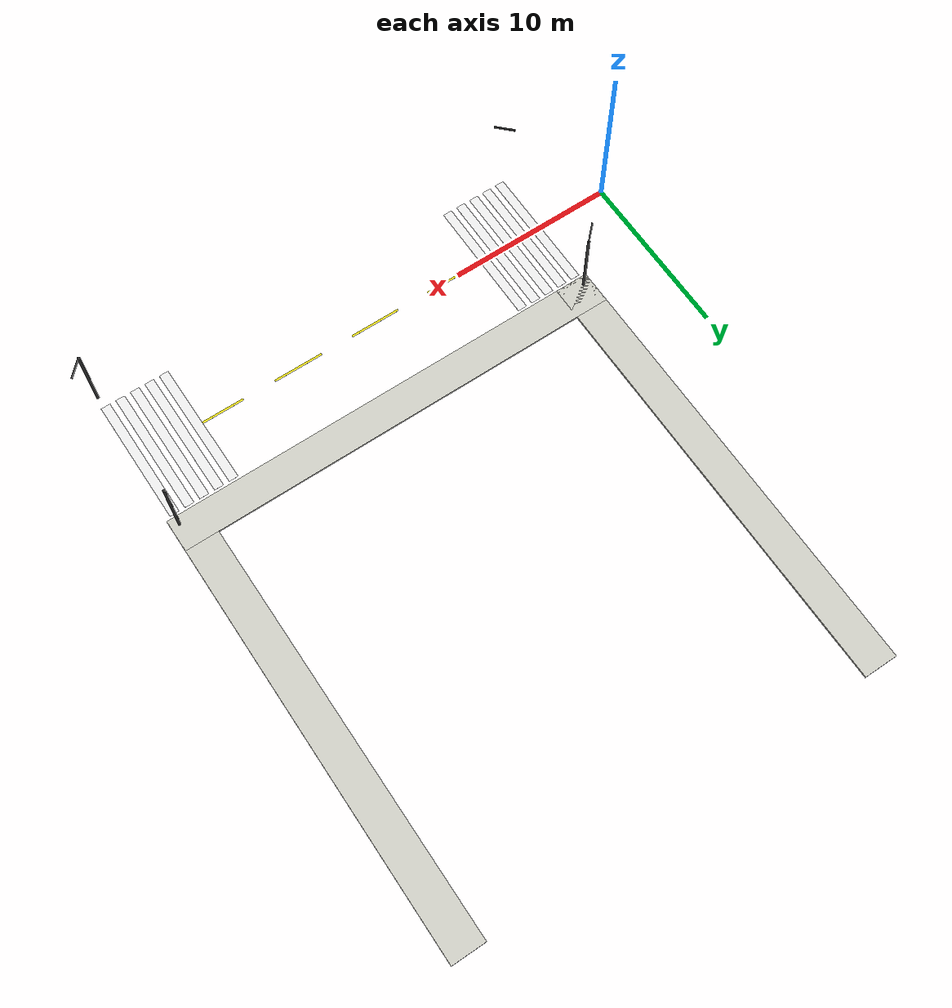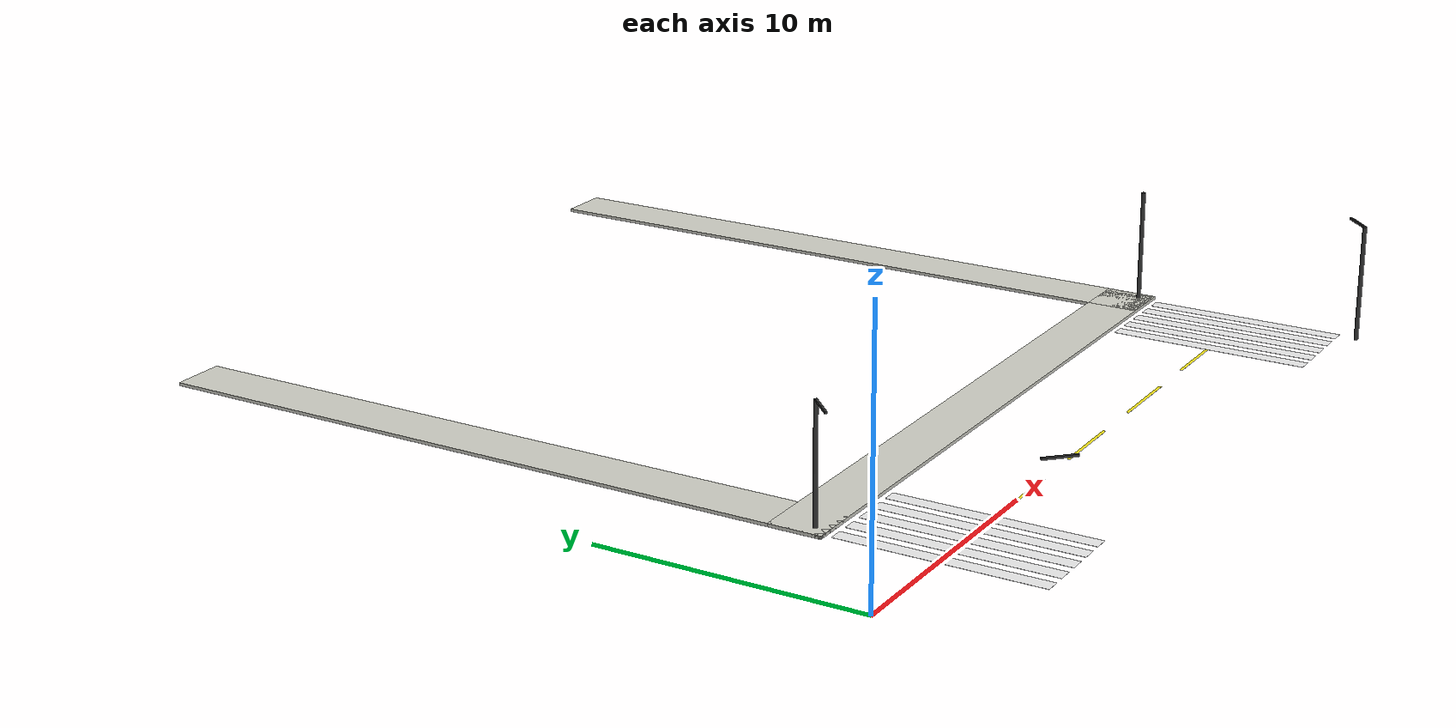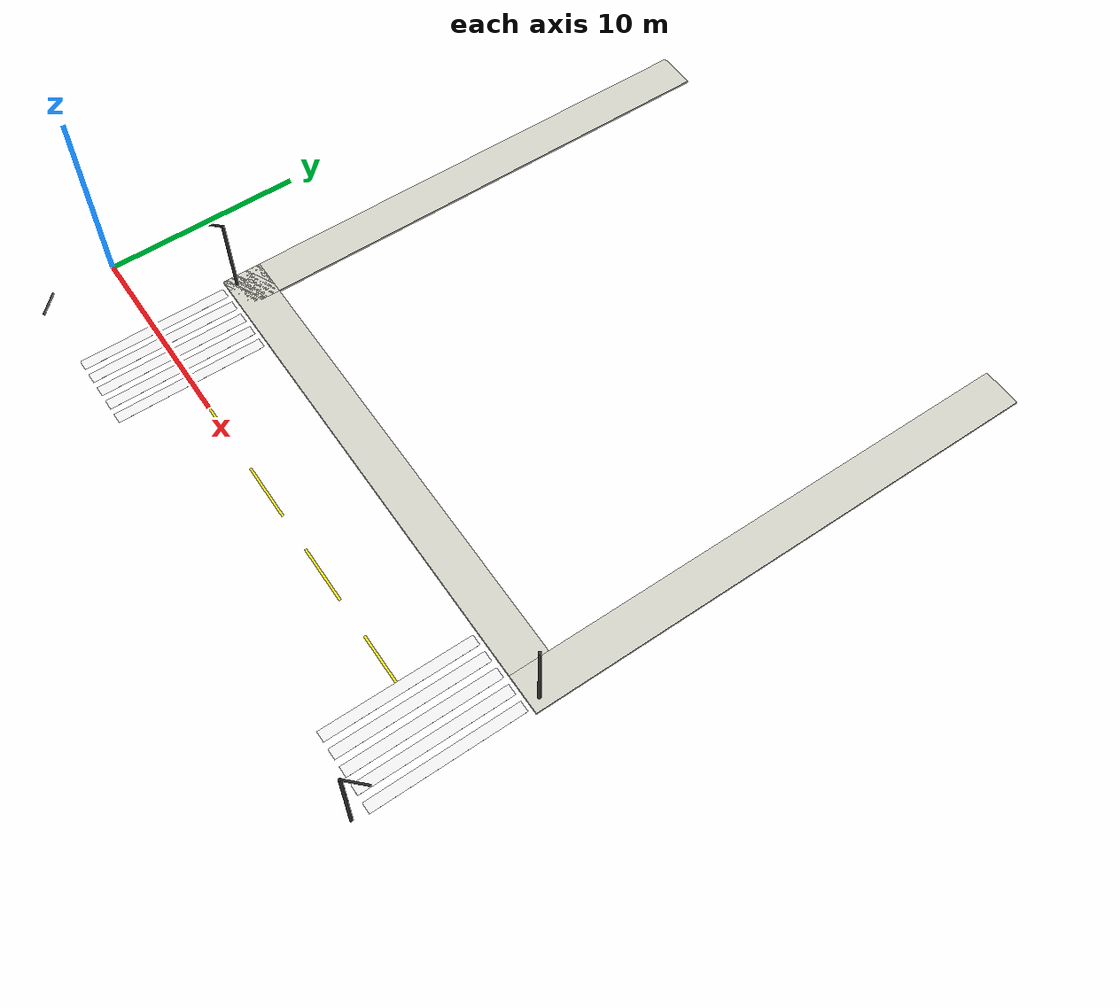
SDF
<sdf version="1.9">
 <world name="city">
  <model name="sw_v_22">
   <static>true</static>
   <pose>5.0 17.5 0.065 0 0 0</pose>
   <link name="l">
    <collision name="c"><geometry><box><size>2.0 27.0 0.12</size></box></geometry></collision>
    <visual name="v">
     <geometry><box><size>2.0 27.0 0.12</size></box></geometry>
     <material>
      <ambient>0.82 0.82 0.78 1</ambient>
      <diffuse>0.82 0.82 0.78 1</diffuse>
      <specular>0.04 0.04 0.04 1</specular>
     </material>
    </visual>
   </link>
  </model>
  <model name="sw_v_26">
   <static>true</static>
   <pose>30.0 17.5 0.065 0 0 0</pose>
   <link name="l">
    <collision name="c"><geometry><box><size>2.0 27.0 0.12</size></box></geometry></collision>
    <visual name="v">
     <geometry><box><size>2.0 27.0 0.12</size></box></geometry>
     <material>
      <ambient>0.82 0.82 0.78 1</ambient>
      <diffuse>0.82 0.82 0.78 1</diffuse>
      <specular>0.04 0.04 0.04 1</specular>
     </material>
    </visual>
   </link>
  </model>
  <model name="sw_h_46">
   <static>true</static>
   <pose>17.5 5.0 0.065 0 0 0</pose>
   <link name="l">
    <collision name="c"><geometry><box><size>27.0 2.0 0.12</size></box></geometry></collision>
    <visual name="v">
     <geometry><box><size>27.0 2.0 0.12</size></box></geometry>
     <material>
      <ambient>0.82 0.82 0.78 1</ambient>
      <diffuse>0.82 0.82 0.78 1</diffuse>
      <specular>0.04 0.04 0.04 1</specular>
     </material>
    </visual>
   </link>
  </model>
  <model name="sw_corner_75">
   <static>true</static>
   <pose>5.0 5.0 0.065 0 0 0</pose>
   <link name="l">
    <collision name="c"><geometry><box><size>2.0 2.0 0.12</size></box></geometry></collision>
    <visual name="v">
     <geometry><box><size>2.0 2.0 0.12</size></box></geometry>
     <material>
      <ambient>0.82 0.82 0.78 1</ambient>
      <diffuse>0.82 0.82 0.78 1</diffuse>
      <specular>0.04 0.04 0.04 1</specular>
     </material>
    </visual>
   </link>
  </model>
  <model name="sw_corner_85">
   <static>true</static>
   <pose>30.0 5.0 0.065 0 0 0</pose>
   <link name="l">
    <collision name="c"><geometry><box><size>2.0 2.0 0.12</size></box></geometry></collision>
    <visual name="v">
     <geometry><box><size>2.0 2.0 0.12</size></box></geometry>
     <material>
      <ambient>0.82 0.82 0.78 1</ambient>
      <diffuse>0.82 0.82 0.78 1</diffuse>
      <specular>0.04 0.04 0.04 1</specular>
     </material>
    </visual>
   </link>
  </model>
  <model name="cw_e_175">
   <static>true</static>
   <pose>4.575 0.0 0.013000000000000001 0 0 0</pose>
   <link name="l">
    <visual name="v">
     <geometry><box><size>0.55 7.6 0.005</size></box></geometry>
     <material>
      <ambient>0.94 0.94 0.94 1</ambient>
      <diffuse>0.94 0.94 0.94 1</diffuse>
      <specular>0.04 0.04 0.04 1</specular>
     </material>
    </visual>
   </link>
  </model>
  <model name="cw_e_179">
   <static>true</static>
   <pose>5.475 0.0 0.013000000000000001 0 0 0</pose>
   <link name="l">
    <visual name="v">
     <geometry><box><size>0.55 7.6 0.005</size></box></geometry>
     <material>
      <ambient>0.94 0.94 0.94 1</ambient>
      <diffuse>0.94 0.94 0.94 1</diffuse>
      <specular>0.04 0.04 0.04 1</specular>
     </material>
    </visual>
   </link>
  </model>
  <model name="cw_e_183">
   <static>true</static>
   <pose>6.375 0.0 0.013000000000000001 0 0 0</pose>
   <link name="l">
    <visual name="v">
     <geometry><box><size>0.55 7.6 0.005</size></box></geometry>
     <material>
      <ambient>0.94 0.94 0.94 1</ambient>
      <diffuse>0.94 0.94 0.94 1</diffuse>
      <specular>0.04 0.04 0.04 1</specular>
     </material>
    </visual>
   </link>
  </model>
  <model name="cw_e_187">
   <static>true</static>
   <pose>7.275 0.0 0.013000000000000001 0 0 0</pose>
   <link name="l">
    <visual name="v">
     <geometry><box><size>0.55 7.6 0.005</size></box></geometry>
     <material>
      <ambient>0.94 0.94 0.94 1</ambient>
      <diffuse>0.94 0.94 0.94 1</diffuse>
      <specular>0.04 0.04 0.04 1</specular>
     </material>
    </visual>
   </link>
  </model>
  <model name="cw_e_191">
   <static>true</static>
   <pose>8.175 0.0 0.013000000000000001 0 0 0</pose>
   <link name="l">
    <visual name="v">
     <geometry><box><size>0.55 7.6 0.005</size></box></geometry>
     <material>
      <ambient>0.94 0.94 0.94 1</ambient>
      <diffuse>0.94 0.94 0.94 1</diffuse>
      <specular>0.04 0.04 0.04 1</specular>
     </material>
    </visual>
   </link>
  </model>
  <model name="cw_w_234">
   <static>true</static>
   <pose>30.425 0.0 0.013000000000000001 0 0 0</pose>
   <link name="l">
    <visual name="v">
     <geometry><box><size>0.55 7.6 0.005</size></box></geometry>
     <material>
      <ambient>0.94 0.94 0.94 1</ambient>
      <diffuse>0.94 0.94 0.94 1</diffuse>
      <specular>0.04 0.04 0.04 1</specular>
     </material>
    </visual>
   </link>
  </model>
  <model name="cw_w_238">
   <static>true</static>
   <pose>29.525 0.0 0.013000000000000001 0 0 0</pose>
   <link name="l">
    <visual name="v">
     <geometry><box><size>0.55 7.6 0.005</size></box></geometry>
     <material>
      <ambient>0.94 0.94 0.94 1</ambient>
      <diffuse>0.94 0.94 0.94 1</diffuse>
      <specular>0.04 0.04 0.04 1</specular>
     </material>
    </visual>
   </link>
  </model>
  <model name="cw_w_242">
   <static>true</static>
   <pose>28.625 0.0 0.013000000000000001 0 0 0</pose>
   <link name="l">
    <visual name="v">
     <geometry><box><size>0.55 7.6 0.005</size></box></geometry>
     <material>
      <ambient>0.94 0.94 0.94 1</ambient>
      <diffuse>0.94 0.94 0.94 1</diffuse>
      <specular>0.04 0.04 0.04 1</specular>
     </material>
    </visual>
   </link>
  </model>
  <model name="cw_w_246">
   <static>true</static>
   <pose>27.725 0.0 0.013000000000000001 0 0 0</pose>
   <link name="l">
    <visual name="v">
     <geometry><box><size>0.55 7.6 0.005</size></box></geometry>
     <material>
      <ambient>0.94 0.94 0.94 1</ambient>
      <diffuse>0.94 0.94 0.94 1</diffuse>
      <specular>0.04 0.04 0.04 1</specular>
     </material>
    </visual>
   </link>
  </model>
  <model name="cw_w_250">
   <static>true</static>
   <pose>26.825 0.0 0.013000000000000001 0 0 0</pose>
   <link name="l">
    <visual name="v">
     <geometry><box><size>0.55 7.6 0.005</size></box></geometry>
     <material>
      <ambient>0.94 0.94 0.94 1</ambient>
      <diffuse>0.94 0.94 0.94 1</diffuse>
      <specular>0.04 0.04 0.04 1</specular>
     </material>
    </visual>
   </link>
  </model>
  <model name="dash_371">
   <static>true</static>
   <pose>5.5 0.0 0.012 0 0 0</pose>
   <link name="l">
    <visual name="v">
     <geometry><box><size>3.0 0.12 0.003</size></box></geometry>
     <material>
      <ambient>0.95 0.9 0.1 1</ambient>
      <diffuse>0.95 0.9 0.1 1</diffuse>
      <specular>0.04 0.04 0.04 1</specular>
     </material>
    </visual>
   </link>
  </model>
  <model name="dash_372">
   <static>true</static>
   <pose>10.5 0.0 0.012 0 0 0</pose>
   <link name="l">
    <visual name="v">
     <geometry><box><size>3.0 0.12 0.003</size></box></geometry>
     <material>
      <ambient>0.95 0.9 0.1 1</ambient>
      <diffuse>0.95 0.9 0.1 1</diffuse>
      <specular>0.04 0.04 0.04 1</specular>
     </material>
    </visual>
   </link>
  </model>
  <model name="dash_373">
   <static>true</static>
   <pose>15.5 0.0 0.012 0 0 0</pose>
   <link name="l">
    <visual name="v">
     <geometry><box><size>3.0 0.12 0.003</size></box></geometry>
     <material>
      <ambient>0.95 0.9 0.1 1</ambient>
      <diffuse>0.95 0.9 0.1 1</diffuse>
      <specular>0.04 0.04 0.04 1</specular>
     </material>
    </visual>
   </link>
  </model>
  <model name="dash_374">
   <static>true</static>
   <pose>20.5 0.0 0.012 0 0 0</pose>
   <link name="l">
    <visual name="v">
     <geometry><box><size>3.0 0.12 0.003</size></box></geometry>
     <material>
      <ambient>0.95 0.9 0.1 1</ambient>
      <diffuse>0.95 0.9 0.1 1</diffuse>
      <specular>0.04 0.04 0.04 1</specular>
     </material>
    </visual>
   </link>
  </model>
  <model name="dash_375">
   <static>true</static>
   <pose>25.5 0.0 0.012 0 0 0</pose>
   <link name="l">
    <visual name="v">
     <geometry><box><size>3.0 0.12 0.003</size></box></geometry>
     <material>
      <ambient>0.95 0.9 0.1 1</ambient>
      <diffuse>0.95 0.9 0.1 1</diffuse>
      <specular>0.04 0.04 0.04 1</specular>
     </material>
    </visual>
   </link>
  </model>
  <model name="tl_0_0_1_arm_793">
   <static>true</static>
   <pose>4.075818454512079 -4.075653424112462 4.505 0 0 2.356</pose>
   <link name="l">
    <collision name="c"><geometry><box><size>1.2 0.08 0.08</size></box></geometry></collision>
    <visual name="v">
     <geometry><box><size>1.2 0.08 0.08</size></box></geometry>
     <material>
      <ambient>0.2 0.2 0.2 1</ambient>
      <diffuse>0.2 0.2 0.2 1</diffuse>
      <specular>0.04 0.04 0.04 1</specular>
     </material>
    </visual>
   </link>
  </model>
  <model name="tl_0_0_3_pole_804">
   <static>true</static>
   <pose>4.5 4.5 2.255 0 0 0</pose>
   <link name="l">
    <collision name="c">
     <geometry><cylinder><radius>0.08</radius><length>4.5</length></cylinder></geometry>
    </collision>
    <visual name="v">
     <geometry><cylinder><radius>0.08</radius><length>4.5</length></cylinder></geometry>
     <material><ambient>0.2 0.2 0.2 1</ambient><diffuse>0.2 0.2 0.2 1</diffuse></material>
    </visual>
   </link>
  </model>
  <model name="tl_0_0_3_arm_805">
   <static>true</static>
   <pose>4.075818454512079 4.075653424112462 4.505 0 0 -2.356</pose>
   <link name="l">
    <collision name="c"><geometry><box><size>1.2 0.08 0.08</size></box></geometry></collision>
    <visual name="v">
     <geometry><box><size>1.2 0.08 0.08</size></box></geometry>
     <material>
      <ambient>0.2 0.2 0.2 1</ambient>
      <diffuse>0.2 0.2 0.2 1</diffuse>
      <specular>0.04 0.04 0.04 1</specular>
     </material>
    </visual>
   </link>
  </model>
  <model name="tl_35_0_0_pole_858">
   <static>true</static>
   <pose>30.5 -4.5 2.255 0 0 0</pose>
   <link name="l">
    <collision name="c">
     <geometry><cylinder><radius>0.08</radius><length>4.5</length></cylinder></geometry>
    </collision>
    <visual name="v">
     <geometry><cylinder><radius>0.08</radius><length>4.5</length></cylinder></geometry>
     <material><ambient>0.2 0.2 0.2 1</ambient><diffuse>0.2 0.2 0.2 1</diffuse></material>
    </visual>
   </link>
  </model>
  <model name="tl_35_0_0_arm_859">
   <static>true</static>
   <pose>30.92443296150032 -4.075904891336781 4.505 0 0 0.785</pose>
   <link name="l">
    <collision name="c"><geometry><box><size>1.2 0.08 0.08</size></box></geometry></collision>
    <visual name="v">
     <geometry><box><size>1.2 0.08 0.08</size></box></geometry>
     <material>
      <ambient>0.2 0.2 0.2 1</ambient>
      <diffuse>0.2 0.2 0.2 1</diffuse>
      <specular>0.04 0.04 0.04 1</specular>
     </material>
    </visual>
   </link>
  </model>
  <model name="tl_35_0_2_pole_870">
   <static>true</static>
   <pose>30.5 4.5 2.255 0 0 0</pose>
   <link name="l">
    <collision name="c">
     <geometry><cylinder><radius>0.08</radius><length>4.5</length></cylinder></geometry>
    </collision>
    <visual name="v">
     <geometry><cylinder><radius>0.08</radius><length>4.5</length></cylinder></geometry>
     <material><ambient>0.2 0.2 0.2 1</ambient><diffuse>0.2 0.2 0.2 1</diffuse></material>
    </visual>
   </link>
  </model>
 </world>
</sdf>
